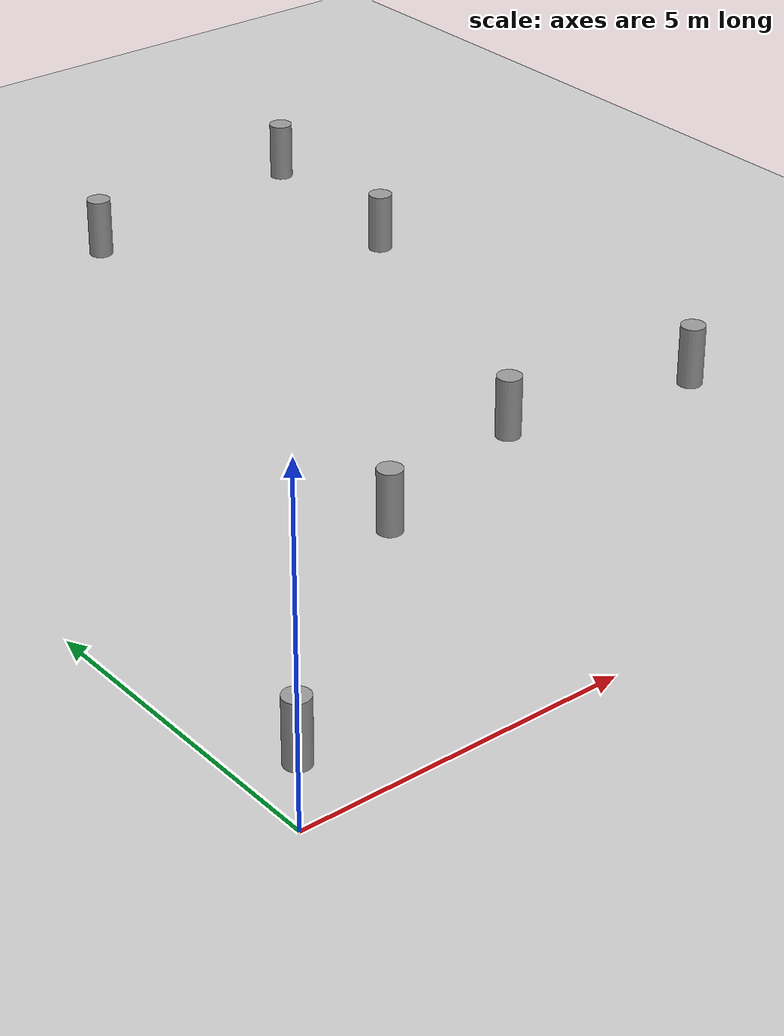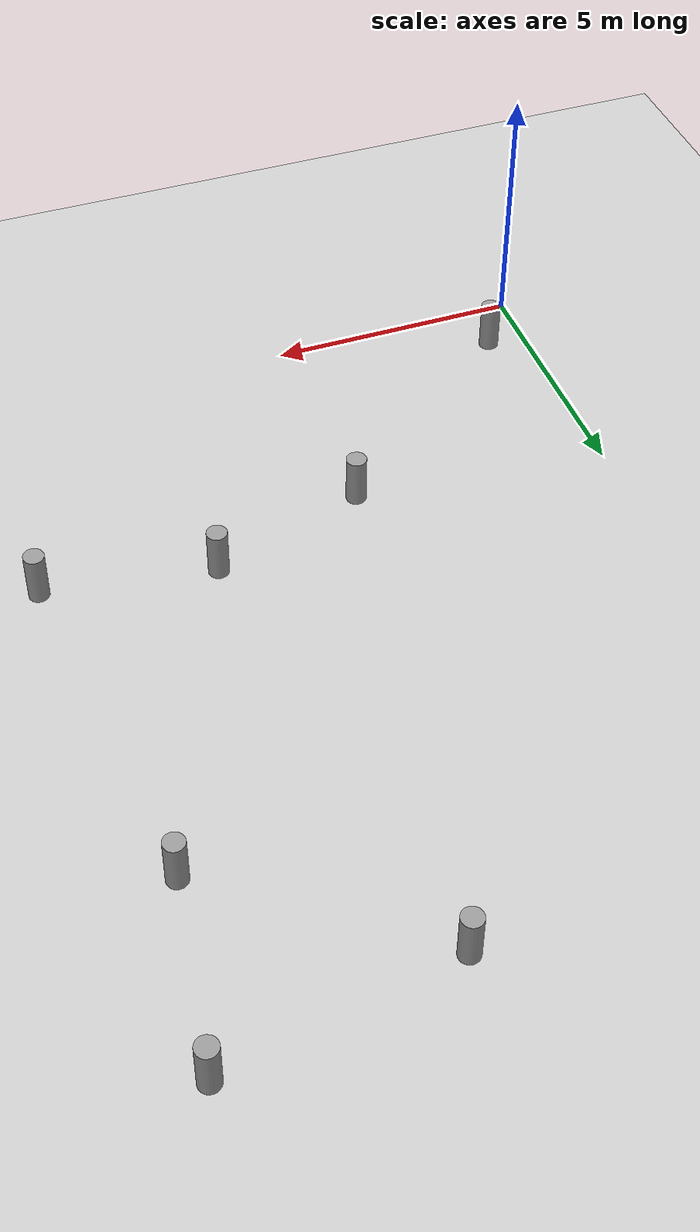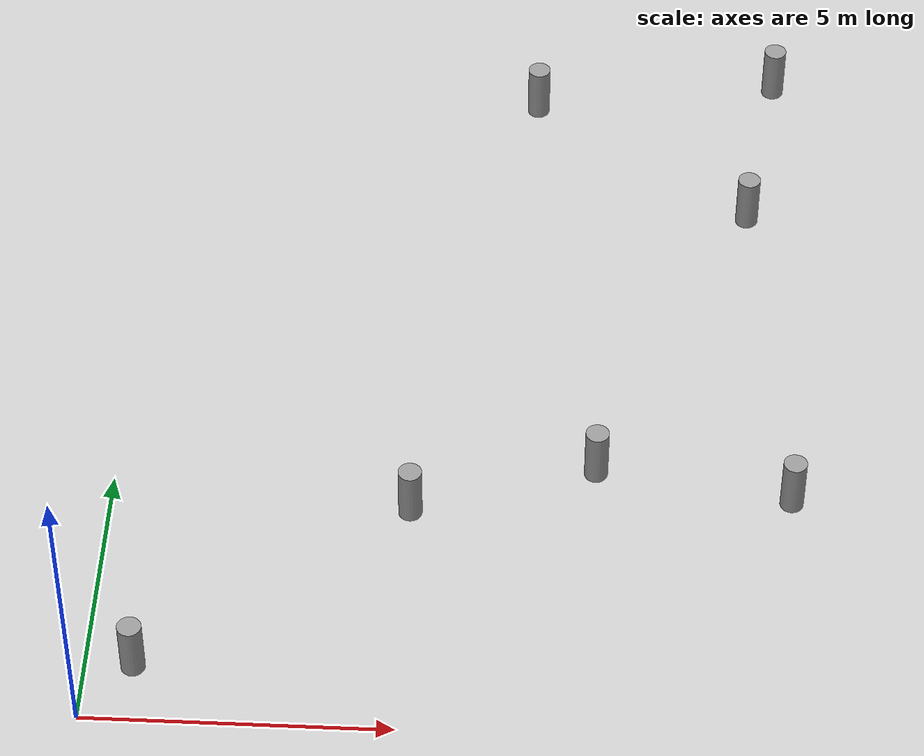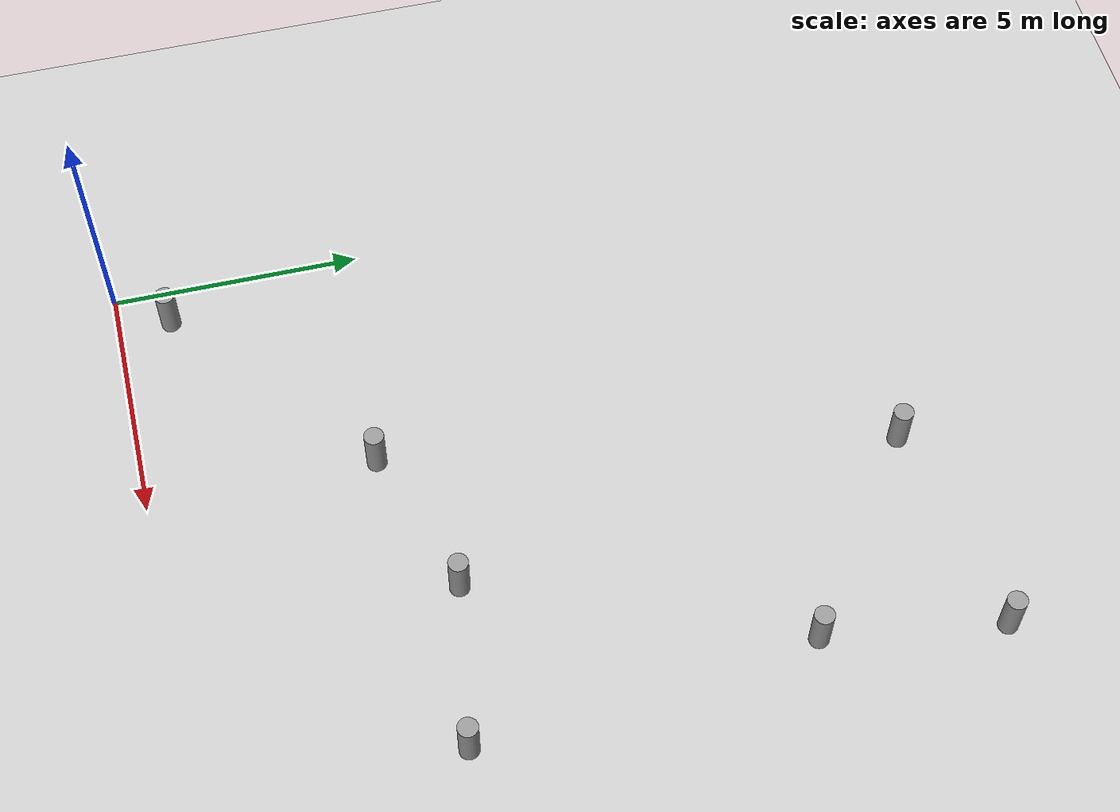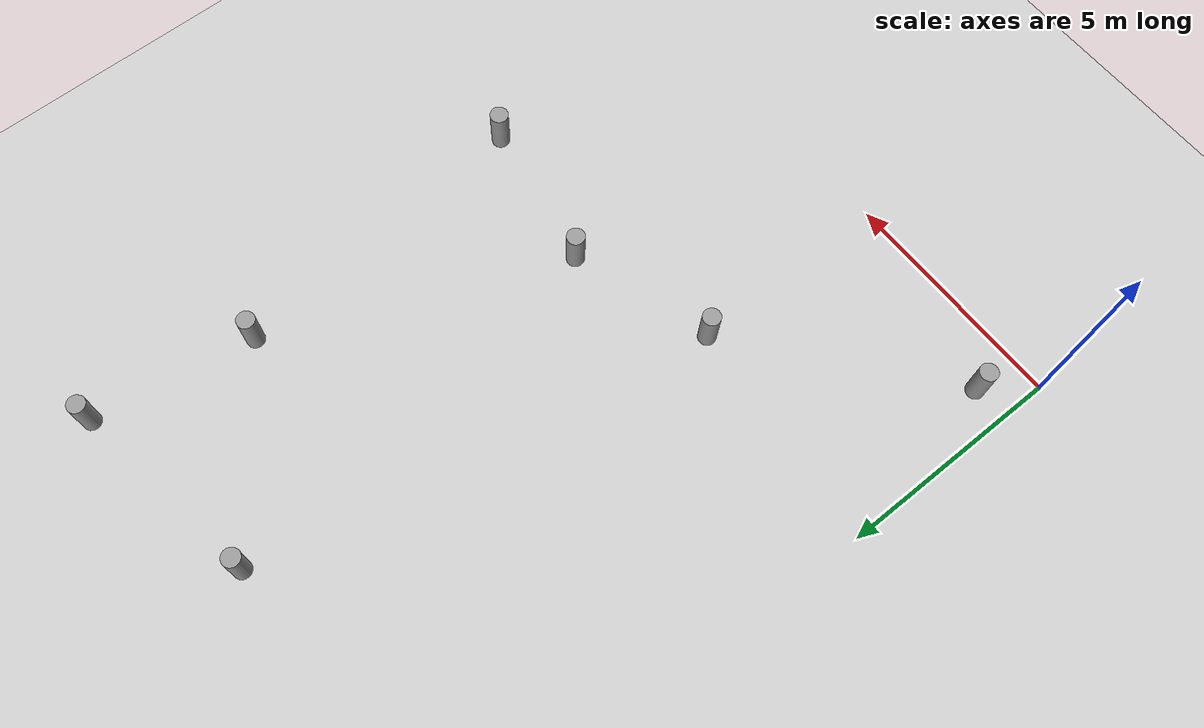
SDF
<sdf version="1.7">
 <world name="default">
  <light name="sun" type="directional">
   <pose>0 0 10 0 -0 0</pose>
   <diffuse>0.8 0.8 0.8 1</diffuse>
   <specular>0.2 0.2 0.2 1</specular>
   <attenuation>
    <range>1000</range>
    <constant>0.9</constant>
    <linear>0.01</linear>
    <quadratic>0.001</quadratic>
   </attenuation>
   <direction>-0.5 0.1 -0.9</direction>
   <spot><inner_angle>0</inner_angle><outer_angle>0</outer_angle><falloff>0</falloff></spot>
  </light>
  <model name="ground_plane">
   <static>1</static>
   <link name="link">
    <collision name="collision">
     <geometry><plane><normal>0 0 1</normal><size>100 100</size></plane></geometry>
     <surface><friction><ode><mu>100</mu><mu2>50</mu2></ode></friction></surface>
    </collision>
    <visual name="visual">
     <cast_shadows>0</cast_shadows>
     <geometry><plane><normal>0 0 1</normal><size>100 100</size></plane></geometry>
     <material>
      <script><uri>file://media/materials/scripts/gazebo.material</uri><name>Gazebo/Grey</name></script>
     </material>
    </visual>
   </link>
  </model>
  <physics name="default_physics" default="0" type="ode">
   <max_step_size>0.001</max_step_size>
   <real_time_factor>1</real_time_factor>
   <real_time_update_rate>1000</real_time_update_rate>
  </physics>
  <gravity>0 0 -9.8</gravity>
  <magnetic_field>6e-06 2.3e-05 -4.2e-05</magnetic_field>
  <atmosphere type="adiabatic"/>
  <scene><ambient>0.4 0.4 0.4 1</ambient><background>0.7 0.7 0.7 1</background><shadows>1</shadows></scene>
  <spherical_coordinates>
   <surface_model>EARTH_WGS84</surface_model>
   <latitude_deg>0</latitude_deg>
   <longitude_deg>0</longitude_deg>
   <elevation>0</elevation>
   <heading_deg>0</heading_deg>
  </spherical_coordinates>
  <model name="unit_cylinder">
   <pose>0.767037 1.05678 0.499991 -0 -0 -1e-06</pose>
   <link name="link">
    <inertial>
     <mass>1</mass>
     <inertia><ixx>0.145833</ixx><ixy>0</ixy><ixz>0</ixz><iyy>0.145833</iyy><iyz>0</iyz><izz>0.125</izz></inertia>
    </inertial>
    <collision name="collision">
     <geometry><cylinder><radius>0.196535</radius><length>1</length></cylinder></geometry>
    </collision>
    <visual name="visual">
     <geometry><cylinder><radius>0.196535</radius><length>1</length></cylinder></geometry>
     <material>
      <script><name>Gazebo/Grey</name><uri>file://media/materials/scripts/gazebo.material</uri></script>
     </material>
    </visual>
   </link>
  </model>
  <model name="unit_cylinder_clone">
   <pose>4.97192 4.51178 0.499991 -0 -0 -1e-06</pose>
   <link name="link">
    <inertial>
     <mass>1</mass>
     <inertia><ixx>0.145833</ixx><ixy>0</ixy><ixz>0</ixz><iyy>0.145833</iyy><iyz>0</iyz><izz>0.125</izz></inertia>
    </inertial>
    <collision name="collision">
     <geometry><cylinder><radius>0.196535</radius><length>1</length></cylinder></geometry>
    </collision>
    <visual name="visual">
     <geometry><cylinder><radius>0.196535</radius><length>1</length></cylinder></geometry>
     <material>
      <script><name>Gazebo/Grey</name><uri>file://media/materials/scripts/gazebo.material</uri></script>
     </material>
    </visual>
   </link>
  </model>
  <model name="unit_cylinder_clone_0">
   <pose>8.02198 5.51326 0.499995 0 -0 0.036979</pose>
   <link name="link">
    <inertial>
     <mass>1</mass>
     <inertia><ixx>0.145833</ixx><ixy>0</ixy><ixz>0</ixz><iyy>0.145833</iyy><iyz>0</iyz><izz>0.125</izz></inertia>
    </inertial>
    <collision name="collision">
     <geometry><cylinder><radius>0.196535</radius><length>1</length></cylinder></geometry>
    </collision>
    <visual name="visual">
     <geometry><cylinder><radius>0.196535</radius><length>1</length></cylinder></geometry>
     <material>
      <script><name>Gazebo/Grey</name><uri>file://media/materials/scripts/gazebo.material</uri></script>
     </material>
    </visual>
   </link>
  </model>
  <model name="unit_cylinder_clone_1">
   <pose>11.2765 4.99729 0.499991 -0 -0 -2e-06</pose>
   <link name="link">
    <inertial>
     <mass>1</mass>
     <inertia><ixx>0.145833</ixx><ixy>0</ixy><ixz>0</ixz><iyy>0.145833</iyy><iyz>0</iyz><izz>0.125</izz></inertia>
    </inertial>
    <collision name="collision">
     <geometry><cylinder><radius>0.196535</radius><length>1</length></cylinder></geometry>
    </collision>
    <visual name="visual">
     <geometry><cylinder><radius>0.196535</radius><length>1</length></cylinder></geometry>
     <material>
      <script><name>Gazebo/Grey</name><uri>file://media/materials/scripts/gazebo.material</uri></script>
     </material>
    </visual>
   </link>
  </model>
  <model name="unit_cylinder_clone_2">
   <pose>10.6061 11.7687 0.499999 0 0 -1e-06</pose>
   <link name="link">
    <inertial>
     <mass>1</mass>
     <inertia><ixx>0.145833</ixx><ixy>0</ixy><ixz>0</ixz><iyy>0.145833</iyy><iyz>0</iyz><izz>0.125</izz></inertia>
    </inertial>
    <collision name="collision">
     <geometry><cylinder><radius>0.196535</radius><length>1</length></cylinder></geometry>
    </collision>
    <visual name="visual">
     <geometry><cylinder><radius>0.196535</radius><length>1</length></cylinder></geometry>
     <material>
      <script><name>Gazebo/Grey</name><uri>file://media/materials/scripts/gazebo.material</uri></script>
     </material>
    </visual>
   </link>
  </model>
  <model name="unit_cylinder_clone_3">
   <pose>11.1289 15.281 0.499999 -0 -0 -2e-06</pose>
   <link name="link">
    <inertial>
     <mass>1</mass>
     <inertia><ixx>0.145833</ixx><ixy>0</ixy><ixz>0</ixz><iyy>0.145833</iyy><iyz>0</iyz><izz>0.125</izz></inertia>
    </inertial>
    <collision name="collision">
     <geometry><cylinder><radius>0.196535</radius><length>1</length></cylinder></geometry>
    </collision>
    <visual name="visual">
     <geometry><cylinder><radius>0.196535</radius><length>1</length></cylinder></geometry>
     <material>
      <script><name>Gazebo/Grey</name><uri>file://media/materials/scripts/gazebo.material</uri></script>
     </material>
    </visual>
   </link>
  </model>
  <model name="unit_cylinder_clone_4">
   <pose>6.77708 14.5566 0.499991 -0 -0 -1e-06</pose>
   <link name="link">
    <inertial>
     <mass>1</mass>
     <inertia><ixx>0.145833</ixx><ixy>0</ixy><ixz>0</ixz><iyy>0.145833</iyy><iyz>0</iyz><izz>0.125</izz></inertia>
    </inertial>
    <collision name="collision">
     <geometry><cylinder><radius>0.196535</radius><length>1</length></cylinder></geometry>
    </collision>
    <visual name="visual">
     <geometry><cylinder><radius>0.196535</radius><length>1</length></cylinder></geometry>
     <material>
      <script><name>Gazebo/Grey</name><uri>file://media/materials/scripts/gazebo.material</uri></script>
     </material>
    </visual>
   </link>
  </model>
  <light name="user_point_light_0" type="point">
   <pose>11.1154 15.3528 1 0 -0 0</pose>
   <diffuse>0.5 0.5 0.5 1</diffuse>
   <specular>0.1 0.1 0.1 1</specular>
   <attenuation>
    <range>20</range>
    <constant>0.5</constant>
    <linear>0.01</linear>
    <quadratic>0.001</quadratic>
   </attenuation>
   <cast_shadows>0</cast_shadows>
   <direction>0 0 -1</direction>
  </light>
  <light name="user_point_light_1" type="point">
   <pose>11.342 4.92593 1 0 -0 0</pose>
   <diffuse>0.5 0.5 0.5 1</diffuse>
   <specular>0.1 0.1 0.1 1</specular>
   <attenuation>
    <range>20</range>
    <constant>0.5</constant>
    <linear>0.01</linear>
    <quadratic>0.001</quadratic>
   </attenuation>
   <cast_shadows>0</cast_shadows>
   <direction>0 0 -1</direction>
  </light>
 </world>
</sdf>
